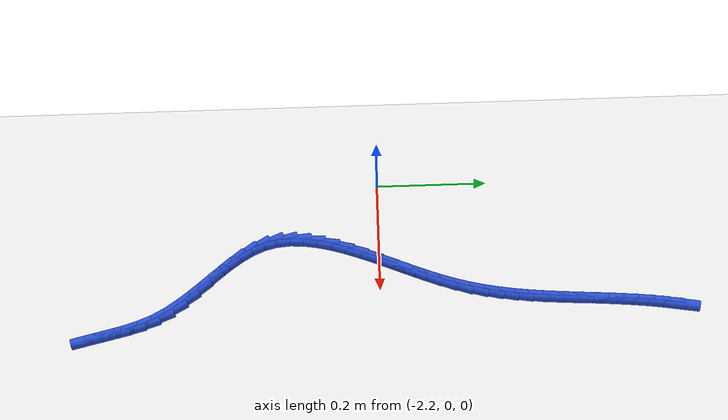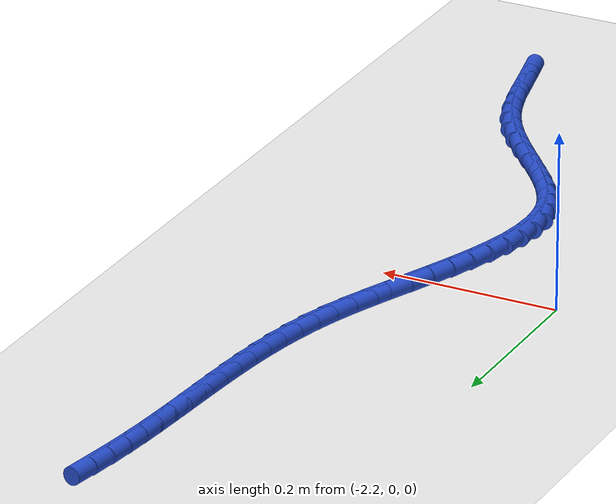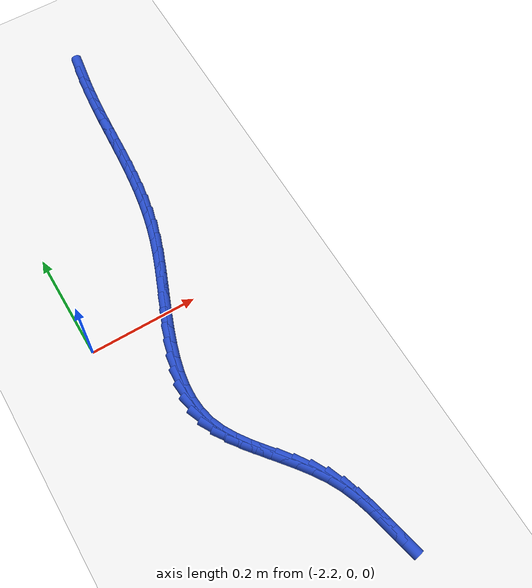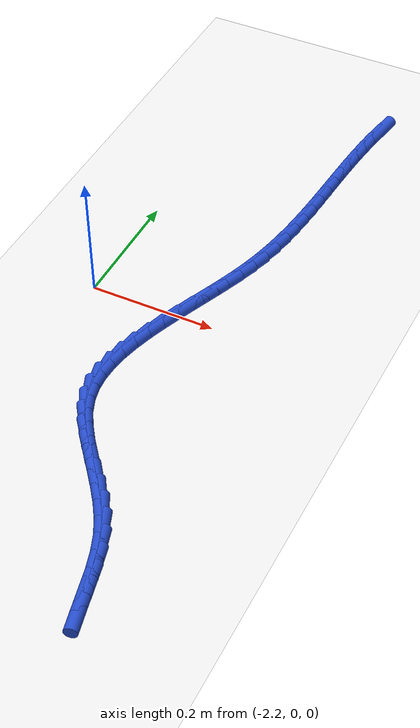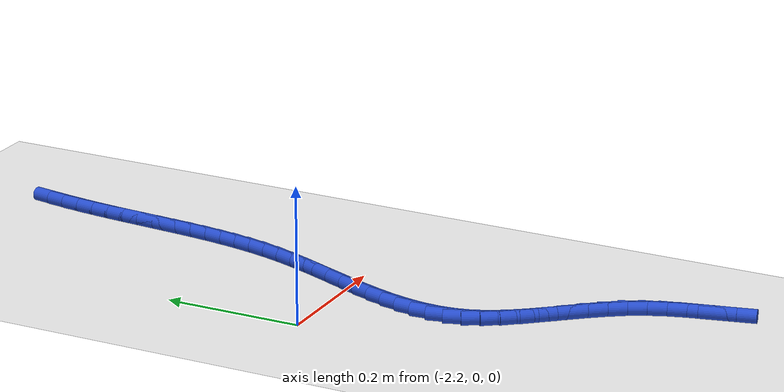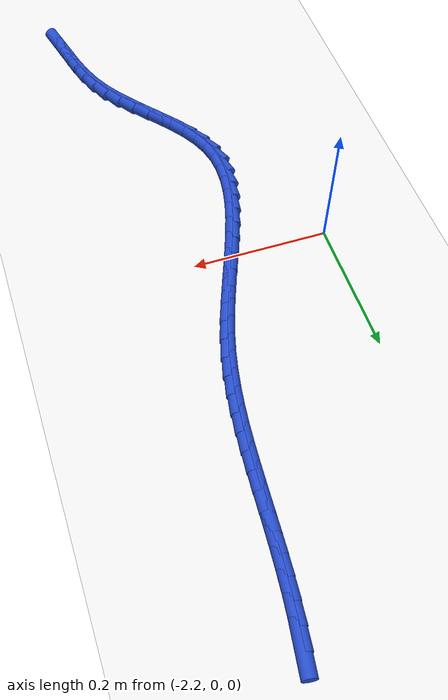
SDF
<sdf version="1.6">
 <world name="default">
  <model name="ground_plane">
   <static>1</static>
   <link name="link">
    <collision name="collision">
     <geometry><plane><normal>0 0 1</normal><size>100 100</size></plane></geometry>
     <surface><friction><ode><mu>100</mu><mu2>50</mu2></ode></friction></surface>
    </collision>
    <visual name="visual">
     <cast_shadows>0</cast_shadows>
     <geometry><plane><normal>0 0 1</normal><size>100 100</size></plane></geometry>
     <material>
      <script><uri>file://media/materials/scripts/gazebo.material</uri><name>Gazebo/WhiteGlow</name></script>
     </material>
    </visual>
   </link>
  </model>
  <model name="line">
   <link name="link_104">
    <pose>-1.9540280592796044 0.5311503725264785 0.01 0 1.57 1.4152168053364191</pose>
    <collision name="collision">
     <geometry><cylinder><radius>0.01</radius><length>0.08</length></cylinder></geometry>
    </collision>
    <visual name="visual">
     <material>
      <script><name>Gazebo/Blue</name><uri>file://media/materials/scripts/gazebo.material</uri></script>
     </material>
     <geometry><cylinder><radius>0.01</radius><length>0.08</length></cylinder></geometry>
    </visual>
   </link>
   <link name="link_105">
    <pose>-1.9582789968468357 0.504047935838143 0.01 0 1.57 1.4443849118025855</pose>
    <collision name="collision">
     <geometry><cylinder><radius>0.01</radius><length>0.08</length></cylinder></geometry>
    </collision>
    <visual name="visual">
     <material>
      <script><name>Gazebo/Blue</name><uri>file://media/materials/scripts/gazebo.material</uri></script>
     </material>
     <geometry><cylinder><radius>0.01</radius><length>0.08</length></cylinder></geometry>
    </visual>
   </link>
   <link name="link_106">
    <pose>-1.9617523219422939 0.4767180915397827 0.01 0 1.57 1.467642716827657</pose>
    <collision name="collision">
     <geometry><cylinder><radius>0.01</radius><length>0.08</length></cylinder></geometry>
    </collision>
    <visual name="visual">
     <material>
      <script><name>Gazebo/Blue</name><uri>file://media/materials/scripts/gazebo.material</uri></script>
     </material>
     <geometry><cylinder><radius>0.01</radius><length>0.08</length></cylinder></geometry>
    </visual>
   </link>
   <link name="link_107">
    <pose>-1.9645920108227157 0.44928706253666933 0.01 0 1.57 1.4852568395512622</pose>
    <collision name="collision">
     <geometry><cylinder><radius>0.01</radius><length>0.08</length></cylinder></geometry>
    </collision>
    <visual name="visual">
     <material>
      <script><name>Gazebo/Blue</name><uri>file://media/materials/scripts/gazebo.material</uri></script>
     </material>
     <geometry><cylinder><radius>0.01</radius><length>0.08</length></cylinder></geometry>
    </visual>
   </link>
   <link name="link_108">
    <pose>-1.9669420397448383 0.4218810717340745 0.01 0 1.57 1.4973872872635863</pose>
    <collision name="collision">
     <geometry><cylinder><radius>0.01</radius><length>0.08</length></cylinder></geometry>
    </collision>
    <visual name="visual">
     <material>
      <script><name>Gazebo/Blue</name><uri>file://media/materials/scripts/gazebo.material</uri></script>
     </material>
     <geometry><cylinder><radius>0.01</radius><length>0.08</length></cylinder></geometry>
    </visual>
   </link>
   <link name="link_109">
    <pose>-1.9689463849653968 0.39462634203726954 0.01 0 1.57 1.5040410296175273</pose>
    <collision name="collision">
     <geometry><cylinder><radius>0.01</radius><length>0.08</length></cylinder></geometry>
    </collision>
    <visual name="visual">
     <material>
      <script><name>Gazebo/Blue</name><uri>file://media/materials/scripts/gazebo.material</uri></script>
     </material>
     <geometry><cylinder><radius>0.01</radius><length>0.08</length></cylinder></geometry>
    </visual>
   </link>
   <link name="link_110">
    <pose>-1.9707506941425732 0.3676377988952388 0.01 0 1.57 1.5047838876552855</pose>
    <collision name="collision">
     <geometry><cylinder><radius>0.01</radius><length>0.08</length></cylinder></geometry>
    </collision>
    <visual name="visual">
     <material>
      <script><name>Gazebo/Blue</name><uri>file://media/materials/scripts/gazebo.material</uri></script>
     </material>
     <geometry><cylinder><radius>0.01</radius><length>0.08</length></cylinder></geometry>
    </visual>
   </link>
   <link name="link_111">
    <pose>-1.9725169871649628 0.3409197034053727 0.01 0 1.57 1.499253194608998</pose>
    <collision name="collision">
     <geometry><cylinder><radius>0.01</radius><length>0.08</length></cylinder></geometry>
    </collision>
    <visual name="visual">
     <material>
      <script><name>Gazebo/Blue</name><uri>file://media/materials/scripts/gazebo.material</uri></script>
     </material>
     <geometry><cylinder><radius>0.01</radius><length>0.08</length></cylinder></geometry>
    </visual>
   </link>
   <link name="link_112">
    <pose>-1.9744165554200674 0.31441364808605304 0.01 0 1.57 1.4873481328922775</pose>
    <collision name="collision">
     <geometry><cylinder><radius>0.01</radius><length>0.08</length></cylinder></geometry>
    </collision>
    <visual name="visual">
     <material>
      <script><name>Gazebo/Blue</name><uri>file://media/materials/scripts/gazebo.material</uri></script>
     </material>
     <geometry><cylinder><radius>0.01</radius><length>0.08</length></cylinder></geometry>
    </visual>
   </link>
   <link name="link_113">
    <pose>-1.976620795946919 0.2880605113282842 0.01 0 1.57 1.4690778751968707</pose>
    <collision name="collision">
     <geometry><cylinder><radius>0.01</radius><length>0.08</length></cylinder></geometry>
    </collision>
    <visual name="visual">
     <material>
      <script><name>Gazebo/Blue</name><uri>file://media/materials/scripts/gazebo.material</uri></script>
     </material>
     <geometry><cylinder><radius>0.01</radius><length>0.08</length></cylinder></geometry>
    </visual>
   </link>
   <link name="link_114">
    <pose>-1.9793011057845478 0.26180117152307036 0.01 0 1.57 1.4445760212550567</pose>
    <collision name="collision">
     <geometry><cylinder><radius>0.01</radius><length>0.08</length></cylinder></geometry>
    </collision>
    <visual name="visual">
     <material>
      <script><name>Gazebo/Blue</name><uri>file://media/materials/scripts/gazebo.material</uri></script>
     </material>
     <geometry><cylinder><radius>0.01</radius><length>0.08</length></cylinder></geometry>
    </visual>
   </link>
   <link name="link_115">
    <pose>-1.9826288819719866 0.23557650706141633 0.01 0 1.57 1.4141185072919555</pose>
    <collision name="collision">
     <geometry><cylinder><radius>0.01</radius><length>0.08</length></cylinder></geometry>
    </collision>
    <visual name="visual">
     <material>
      <script><name>Gazebo/Blue</name><uri>file://media/materials/scripts/gazebo.material</uri></script>
     </material>
     <geometry><cylinder><radius>0.01</radius><length>0.08</length></cylinder></geometry>
    </visual>
   </link>
   <link name="link_116">
    <pose>-1.9867755215482659 0.20932739633432634 0.01 0 1.57 1.3781388688601297</pose>
    <collision name="collision">
     <geometry><cylinder><radius>0.01</radius><length>0.08</length></cylinder></geometry>
    </collision>
    <visual name="visual">
     <material>
      <script><name>Gazebo/Blue</name><uri>file://media/materials/scripts/gazebo.material</uri></script>
     </material>
     <geometry><cylinder><radius>0.01</radius><length>0.08</length></cylinder></geometry>
    </visual>
   </link>
   <link name="link_117">
    <pose>-1.9919124215524169 0.18299471773280482 0.01 0 1.57 1.3372355084726284</pose>
    <collision name="collision">
     <geometry><cylinder><radius>0.01</radius><length>0.08</length></cylinder></geometry>
    </collision>
    <visual name="visual">
     <material>
      <script><name>Gazebo/Blue</name><uri>file://media/materials/scripts/gazebo.material</uri></script>
     </material>
     <geometry><cylinder><radius>0.01</radius><length>0.08</length></cylinder></geometry>
    </visual>
   </link>
   <link name="link_118">
    <pose>-1.9982109790234723 0.15651934964785635 0.01 0 1.57 1.2921653592285014</pose>
    <collision name="collision">
     <geometry><cylinder><radius>0.01</radius><length>0.08</length></cylinder></geometry>
    </collision>
    <visual name="visual">
     <material>
      <script><name>Gazebo/Blue</name><uri>file://media/materials/scripts/gazebo.material</uri></script>
     </material>
     <geometry><cylinder><radius>0.01</radius><length>0.08</length></cylinder></geometry>
    </visual>
   </link>
   <link name="link_119">
    <pose>-2.005842591000462 0.1298421704704852 0.01 0 1.57 1.246636167090951</pose>
    <collision name="collision">
     <geometry><cylinder><radius>0.01</radius><length>0.08</length></cylinder></geometry>
    </collision>
    <visual name="visual">
     <material>
      <script><name>Gazebo/Blue</name><uri>file://media/materials/scripts/gazebo.material</uri></script>
     </material>
     <geometry><cylinder><radius>0.01</radius><length>0.08</length></cylinder></geometry>
    </visual>
   </link>
   <link name="link_120">
    <pose>-2.014886411717792 0.10292706511774405 0.01 0 1.57 1.2126273493643605</pose>
    <collision name="collision">
     <geometry><cylinder><radius>0.01</radius><length>0.08</length></cylinder></geometry>
    </collision>
    <visual name="visual">
     <material>
      <script><name>Gazebo/Blue</name><uri>file://media/materials/scripts/gazebo.material</uri></script>
     </material>
     <geometry><cylinder><radius>0.01</radius><length>0.08</length></cylinder></geometry>
    </visual>
   </link>
   <link name="link_121">
    <pose>-2.0250268311879194 0.07583637771325132 0.01 0 1.57 1.192042494740316</pose>
    <collision name="collision">
     <geometry><cylinder><radius>0.01</radius><length>0.08</length></cylinder></geometry>
    </collision>
    <visual name="visual">
     <material>
      <script><name>Gazebo/Blue</name><uri>file://media/materials/scripts/gazebo.material</uri></script>
     </material>
     <geometry><cylinder><radius>0.01</radius><length>0.08</length></cylinder></geometry>
    </visual>
   </link>
   <link name="link_122">
    <pose>-2.035842655649885 0.04865878631358912 0.01 0 1.57 1.1839709345875267</pose>
    <collision name="collision">
     <geometry><cylinder><radius>0.01</radius><length>0.08</length></cylinder></geometry>
    </collision>
    <visual name="visual">
     <material>
      <script><name>Gazebo/Blue</name><uri>file://media/materials/scripts/gazebo.material</uri></script>
     </material>
     <geometry><cylinder><radius>0.01</radius><length>0.08</length></cylinder></geometry>
    </visual>
   </link>
   <link name="link_123">
    <pose>-2.046912690215224 0.021482969256553963 0.01 0 1.57 1.188098808072546</pose>
    <collision name="collision">
     <geometry><cylinder><radius>0.01</radius><length>0.08</length></cylinder></geometry>
    </collision>
    <visual name="visual">
     <material>
      <script><name>Gazebo/Blue</name><uri>file://media/materials/scripts/gazebo.material</uri></script>
     </material>
     <geometry><cylinder><radius>0.01</radius><length>0.08</length></cylinder></geometry>
    </visual>
   </link>
   <link name="link_124">
    <pose>-2.0578157399954673 -0.005602395120057723 0.01 0 1.57 1.204713434442999</pose>
    <collision name="collision">
     <geometry><cylinder><radius>0.01</radius><length>0.08</length></cylinder></geometry>
    </collision>
    <visual name="visual">
     <material>
      <script><name>Gazebo/Blue</name><uri>file://media/materials/scripts/gazebo.material</uri></script>
     </material>
     <geometry><cylinder><radius>0.01</radius><length>0.08</length></cylinder></geometry>
    </visual>
   </link>
   <link name="link_125">
    <pose>-2.0681306101021524 -0.03250862847844936 0.01 0 1.57 1.2347220307521671</pose>
    <collision name="collision">
     <geometry><cylinder><radius>0.01</radius><length>0.08</length></cylinder></geometry>
    </collision>
    <visual name="visual">
     <material>
      <script><name>Gazebo/Blue</name><uri>file://media/materials/scripts/gazebo.material</uri></script>
     </material>
     <geometry><cylinder><radius>0.01</radius><length>0.08</length></cylinder></geometry>
    </visual>
   </link>
   <link name="link_126">
    <pose>-2.077436105646809 -0.059147052480824525 0.01 0 1.57 1.2796765892382094</pose>
    <collision name="collision">
     <geometry><cylinder><radius>0.01</radius><length>0.08</length></cylinder></geometry>
    </collision>
    <visual name="visual">
     <material>
      <script><name>Gazebo/Blue</name><uri>file://media/materials/scripts/gazebo.material</uri></script>
     </material>
     <geometry><cylinder><radius>0.01</radius><length>0.08</length></cylinder></geometry>
    </visual>
   </link>
   <link name="link_127">
    <pose>-2.085311031740974 -0.08542898878938666 0.01 0 1.57 1.3417632754380808</pose>
    <collision name="collision">
     <geometry><cylinder><radius>0.01</radius><length>0.08</length></cylinder></geometry>
    </collision>
    <visual name="visual">
     <material>
      <script><name>Gazebo/Blue</name><uri>file://media/materials/scripts/gazebo.material</uri></script>
     </material>
     <geometry><cylinder><radius>0.01</radius><length>0.08</length></cylinder></geometry>
    </visual>
   </link>
   <link name="link_128">
    <pose>-2.09133419349618 -0.11126575906633934 0.01 0 1.57 1.4236552875258865</pose>
    <collision name="collision">
     <geometry><cylinder><radius>0.01</radius><length>0.08</length></cylinder></geometry>
    </collision>
    <visual name="visual">
     <material>
      <script><name>Gazebo/Blue</name><uri>file://media/materials/scripts/gazebo.material</uri></script>
     </material>
     <geometry><cylinder><radius>0.01</radius><length>0.08</length></cylinder></geometry>
    </visual>
   </link>
   <link name="link_129">
    <pose>-2.0950843960239607 -0.13656868497388602 0.01 0 1.57 1.5280334672806553</pose>
    <collision name="collision">
     <geometry><cylinder><radius>0.01</radius><length>0.08</length></cylinder></geometry>
    </collision>
    <visual name="visual">
     <material>
      <script><name>Gazebo/Blue</name><uri>file://media/materials/scripts/gazebo.material</uri></script>
     </material>
     <geometry><cylinder><radius>0.01</radius><length>0.08</length></cylinder></geometry>
    </visual>
   </link>
   <link name="link_130">
    <pose>-2.0961404444358496 -0.1612490881742302 0.01 0 1.57 -1.4850923415148292</pose>
    <collision name="collision">
     <geometry><cylinder><radius>0.01</radius><length>0.08</length></cylinder></geometry>
    </collision>
    <visual name="visual">
     <material>
      <script><name>Gazebo/Blue</name><uri>file://media/materials/scripts/gazebo.material</uri></script>
     </material>
     <geometry><cylinder><radius>0.01</radius><length>0.08</length></cylinder></geometry>
    </visual>
   </link>
   <link name="link_131">
    <pose>-2.0940811438433795 -0.18521829032957537 0.01 0 1.57 -1.3338150484145386</pose>
    <collision name="collision">
     <geometry><cylinder><radius>0.01</radius><length>0.08</length></cylinder></geometry>
    </collision>
    <visual name="visual">
     <material>
      <script><name>Gazebo/Blue</name><uri>file://media/materials/scripts/gazebo.material</uri></script>
     </material>
     <geometry><cylinder><radius>0.01</radius><length>0.08</length></cylinder></geometry>
    </visual>
   </link>
   <link name="link_132">
    <pose>-2.0884852993580862 -0.20838761310212514 0.01 0 1.57 -1.1719061070490389</pose>
    <collision name="collision">
     <geometry><cylinder><radius>0.01</radius><length>0.08</length></cylinder></geometry>
    </collision>
    <visual name="visual">
     <material>
      <script><name>Gazebo/Blue</name><uri>file://media/materials/scripts/gazebo.material</uri></script>
     </material>
     <geometry><cylinder><radius>0.01</radius><length>0.08</length></cylinder></geometry>
    </visual>
   </link>
   <link name="link_133">
    <pose>-2.079076848259629 -0.23070972672536097 0.01 0 1.57 -1.0408344017477253</pose>
    <collision name="collision">
     <geometry><cylinder><radius>0.01</radius><length>0.08</length></cylinder></geometry>
    </collision>
    <visual name="visual">
     <material>
      <script><name>Gazebo/Blue</name><uri>file://media/materials/scripts/gazebo.material</uri></script>
     </material>
     <geometry><cylinder><radius>0.01</radius><length>0.08</length></cylinder></geometry>
    </visual>
   </link>
   <link name="link_134">
    <pose>-2.066388215070087 -0.2523676417687635 0.01 0 1.57 -0.9513780605550284</pose>
    <collision name="collision">
     <geometry><cylinder><radius>0.01</radius><length>0.08</length></cylinder></geometry>
    </collision>
    <visual name="visual">
     <material>
      <script><name>Gazebo/Blue</name><uri>file://media/materials/scripts/gazebo.material</uri></script>
     </material>
     <geometry><cylinder><radius>0.01</radius><length>0.08</length></cylinder></geometry>
    </visual>
   </link>
   <link name="link_135">
    <pose>-2.0512316948921985 -0.2736241047335666 0.01 0 1.57 -0.898439907927473</pose>
    <collision name="collision">
     <geometry><cylinder><radius>0.01</radius><length>0.08</length></cylinder></geometry>
    </collision>
    <visual name="visual">
     <material>
      <script><name>Gazebo/Blue</name><uri>file://media/materials/scripts/gazebo.material</uri></script>
     </material>
     <geometry><cylinder><radius>0.01</radius><length>0.08</length></cylinder></geometry>
    </visual>
   </link>
   <link name="link_136">
    <pose>-2.0344198539058236 -0.2947419393516549 0.01 0 1.57 -0.8773679403076973</pose>
    <collision name="collision">
     <geometry><cylinder><radius>0.01</radius><length>0.08</length></cylinder></geometry>
    </collision>
    <visual name="visual">
     <material>
      <script><name>Gazebo/Blue</name><uri>file://media/materials/scripts/gazebo.material</uri></script>
     </material>
     <geometry><cylinder><radius>0.01</radius><length>0.08</length></cylinder></geometry>
    </visual>
   </link>
   <link name="link_137">
    <pose>-2.016765258290823 -0.31598396935491274 0.01 0 1.57 -0.885391225414186</pose>
    <collision name="collision">
     <geometry><cylinder><radius>0.01</radius><length>0.08</length></cylinder></geometry>
    </collision>
    <visual name="visual">
     <material>
      <script><name>Gazebo/Blue</name><uri>file://media/materials/scripts/gazebo.material</uri></script>
     </material>
     <geometry><cylinder><radius>0.01</radius><length>0.08</length></cylinder></geometry>
    </visual>
   </link>
   <link name="link_138">
    <pose>-1.9990804742270578 -0.3376130184752248 0.01 0 1.57 -0.921767209536796</pose>
    <collision name="collision">
     <geometry><cylinder><radius>0.01</radius><length>0.08</length></cylinder></geometry>
    </collision>
    <visual name="visual">
     <material>
      <script><name>Gazebo/Blue</name><uri>file://media/materials/scripts/gazebo.material</uri></script>
     </material>
     <geometry><cylinder><radius>0.01</radius><length>0.08</length></cylinder></geometry>
    </visual>
   </link>
   <link name="link_139">
    <pose>-1.9821780678943888 -0.35989191044447544 0.01 0 1.57 -0.9873922702533123</pose>
    <collision name="collision">
     <geometry><cylinder><radius>0.01</radius><length>0.08</length></cylinder></geometry>
    </collision>
    <visual name="visual">
     <material>
      <script><name>Gazebo/Blue</name><uri>file://media/materials/scripts/gazebo.material</uri></script>
     </material>
     <geometry><cylinder><radius>0.01</radius><length>0.08</length></cylinder></geometry>
    </visual>
   </link>
   <link name="link_140">
    <pose>-1.9668706054726774 -0.3830834689945493 0.01 0 1.57 -1.0837665774838092</pose>
    <collision name="collision">
     <geometry><cylinder><radius>0.01</radius><length>0.08</length></cylinder></geometry>
    </collision>
    <visual name="visual">
     <material>
      <script><name>Gazebo/Blue</name><uri>file://media/materials/scripts/gazebo.material</uri></script>
     </material>
     <geometry><cylinder><radius>0.01</radius><length>0.08</length></cylinder></geometry>
    </visual>
   </link>
   <link name="link_141">
    <pose>-1.9539671529844893 -0.40744896600097336 0.01 0 1.57 -1.1924463102870166</pose>
    <collision name="collision">
     <geometry><cylinder><radius>0.01</radius><length>0.08</length></cylinder></geometry>
    </collision>
    <visual name="visual">
     <material>
      <script><name>Gazebo/Blue</name><uri>file://media/materials/scripts/gazebo.material</uri></script>
     </material>
     <geometry><cylinder><radius>0.01</radius><length>0.08</length></cylinder></geometry>
    </visual>
   </link>
   <link name="link_142">
    <pose>-1.9437960709082518 -0.43303654407335723 0.01 0 1.57 -1.2742250802100459</pose>
    <collision name="collision">
     <geometry><cylinder><radius>0.01</radius><length>0.08</length></cylinder></geometry>
    </collision>
    <visual name="visual">
     <material>
      <script><name>Gazebo/Blue</name><uri>file://media/materials/scripts/gazebo.material</uri></script>
     </material>
     <geometry><cylinder><radius>0.01</radius><length>0.08</length></cylinder></geometry>
    </visual>
   </link>
   <link name="link_143">
    <pose>-1.9357196606413478 -0.45946602652005525 0.01 0 1.57 -1.3249371009573556</pose>
    <collision name="collision">
     <geometry><cylinder><radius>0.01</radius><length>0.08</length></cylinder></geometry>
    </collision>
    <visual name="visual">
     <material>
      <script><name>Gazebo/Blue</name><uri>file://media/materials/scripts/gazebo.material</uri></script>
     </material>
     <geometry><cylinder><radius>0.01</radius><length>0.08</length></cylinder></geometry>
    </visual>
   </link>
   <link name="link_144">
    <pose>-1.9289845614075642 -0.48630595578850033 0.01 0 1.57 -1.3454789203092363</pose>
    <collision name="collision">
     <geometry><cylinder><radius>0.01</radius><length>0.08</length></cylinder></geometry>
    </collision>
    <visual name="visual">
     <material>
      <script><name>Gazebo/Blue</name><uri>file://media/materials/scripts/gazebo.material</uri></script>
     </material>
     <geometry><cylinder><radius>0.01</radius><length>0.08</length></cylinder></geometry>
    </visual>
   </link>
   <link name="link_145">
    <pose>-1.922837412430687 -0.5131248743261247 0.01 0 1.57 -1.3358032741570087</pose>
    <collision name="collision">
     <geometry><cylinder><radius>0.01</radius><length>0.08</length></cylinder></geometry>
    </collision>
    <visual name="visual">
     <material>
      <script><name>Gazebo/Blue</name><uri>file://media/materials/scripts/gazebo.material</uri></script>
     </material>
     <geometry><cylinder><radius>0.01</radius><length>0.08</length></cylinder></geometry>
    </visual>
   </link>
  </model>
 </world>
</sdf>
